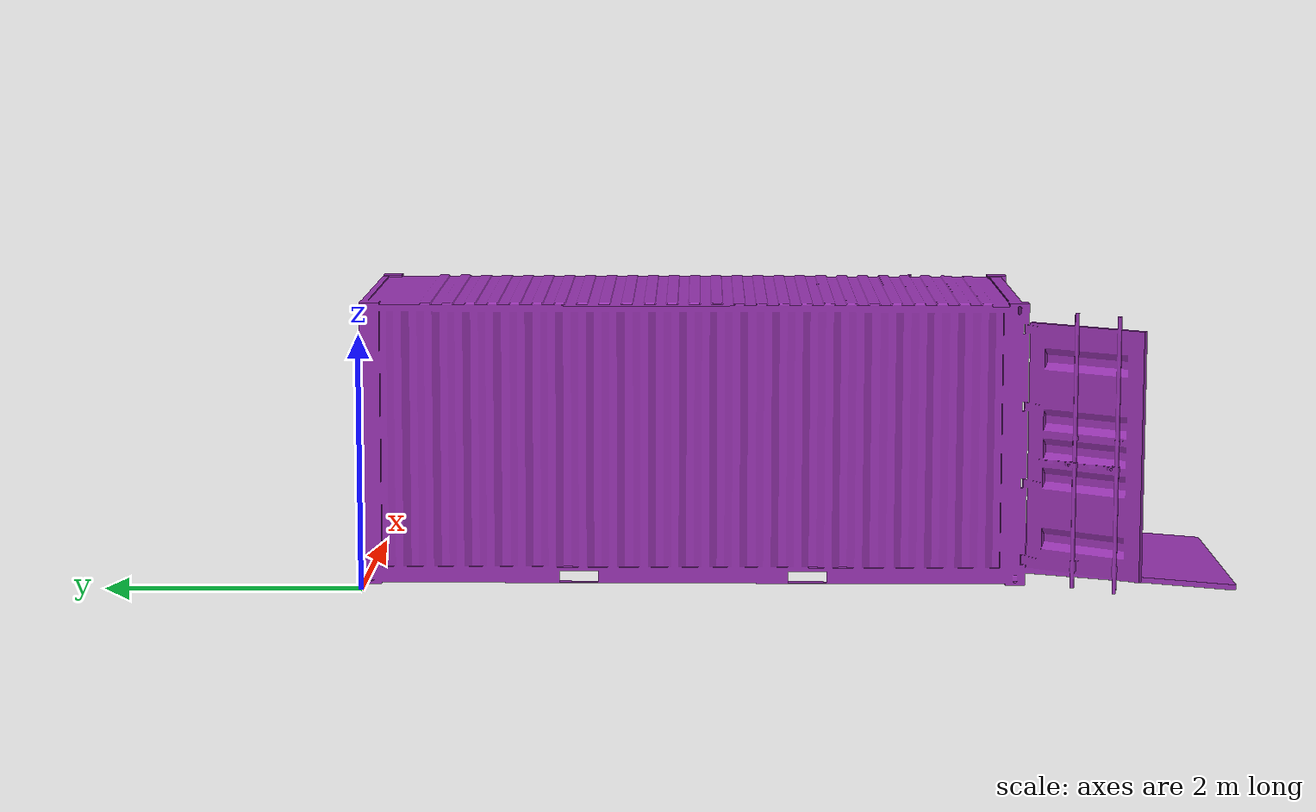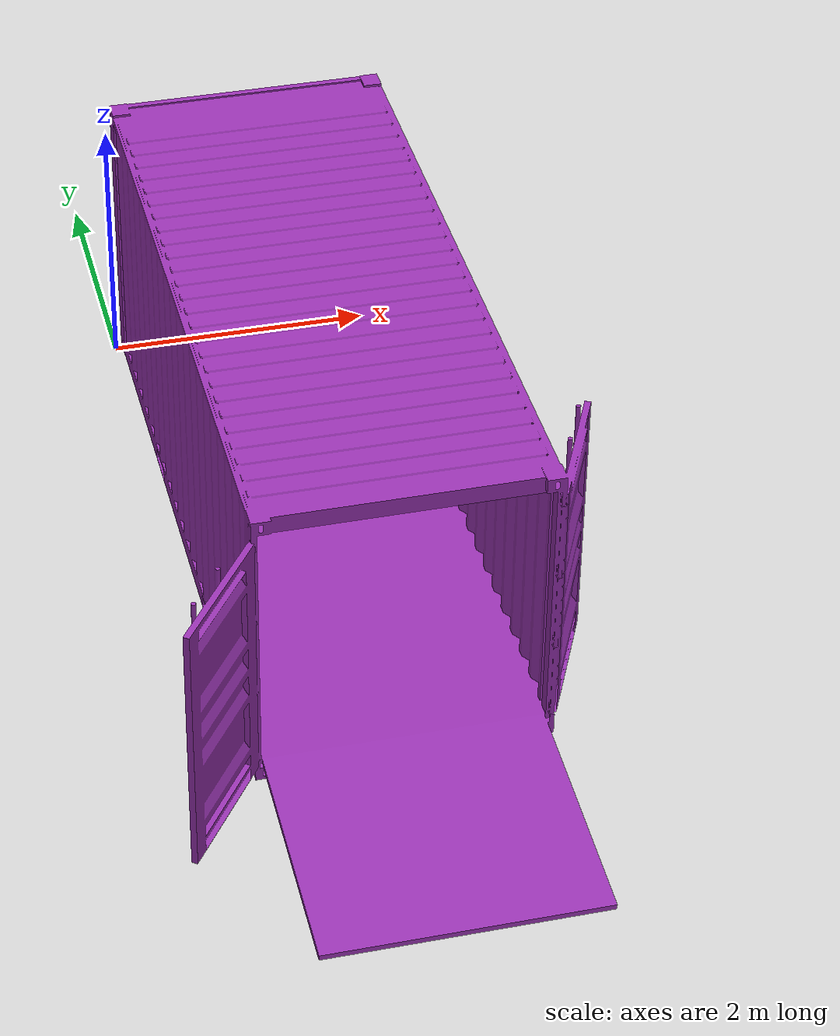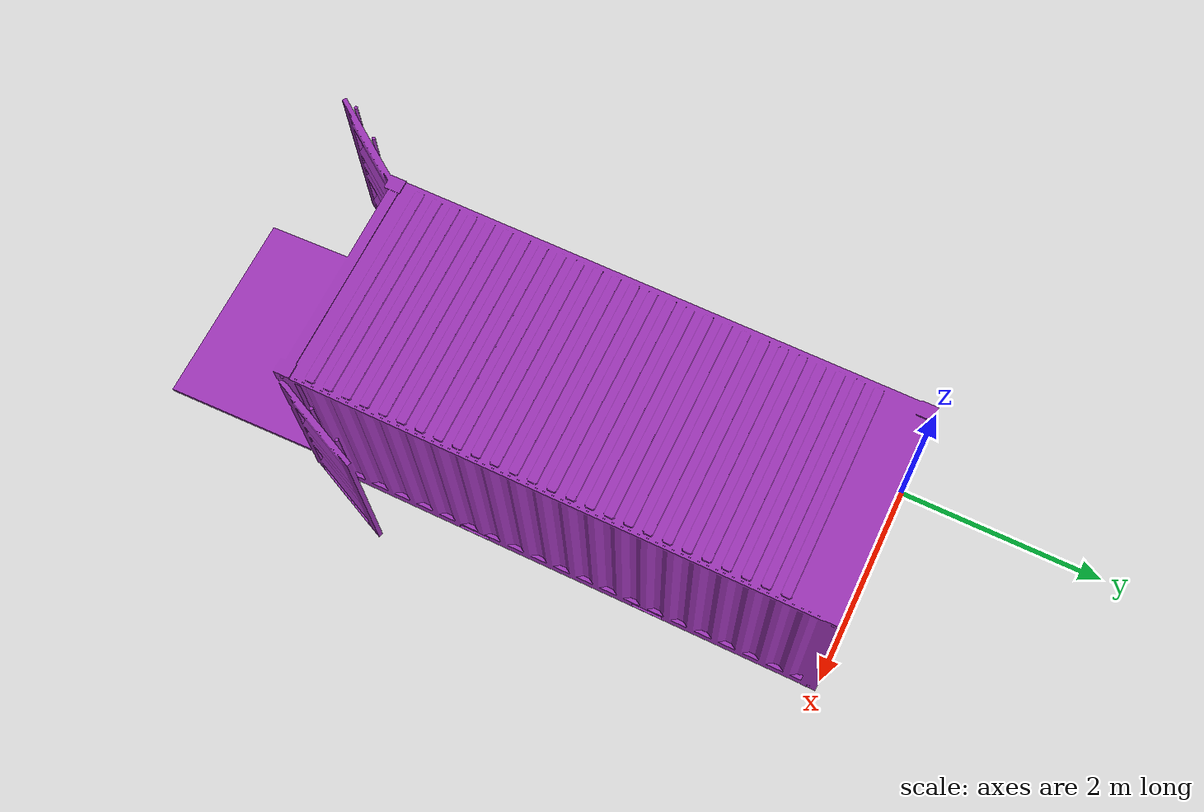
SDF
<?xml version="1.0" ?>
<sdf version="1.5">
  <model name="grapes">

    <pose>0 0 0  0 0 0</pose>

    <static>true</static>
    <link name="link">
      <inertial>
        <mass>50</mass>
        <inertia>
          <ixx>1</ixx>
          <ixy>0</ixy>
          <ixz>0</ixz>
          <iyy>1</iyy>
          <iyz>0</iyz>
          <izz>1</izz>
        </inertia>
      </inertial>

      <collision name="collision">
	    <pose>0 0 0  0 0 0</pose>
        <geometry>
          <mesh>
            <uri>model://sea_container/meshes/container.STL</uri>
          </mesh>
        </geometry>
      </collision>

      <visual name="visual">
        <geometry>
          <mesh>
            <uri>model://sea_container/meshes/container.STL</uri>
          </mesh>
        </geometry>
        <material>
           <script>
  <name>Gazebo/Purple</name>
  </script>
        </material>
      </visual>
    </link>
  </model>
</sdf>
